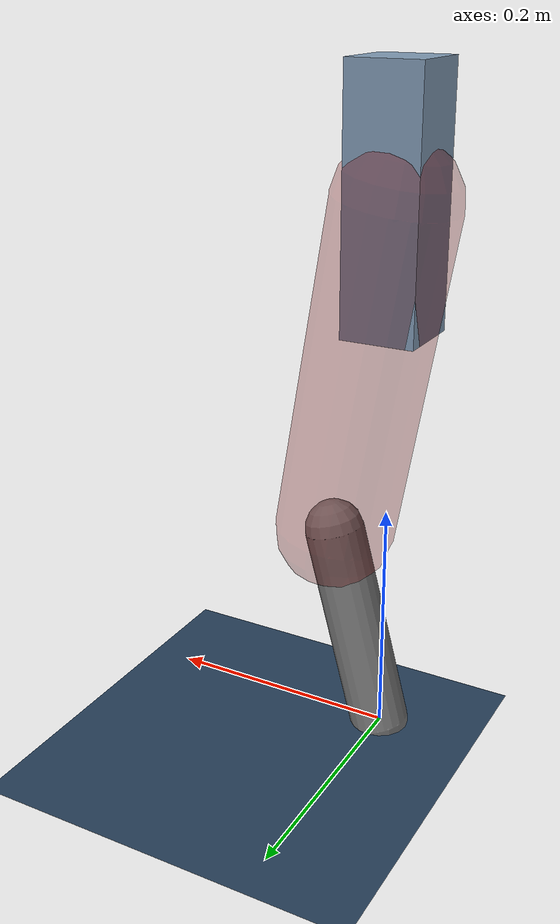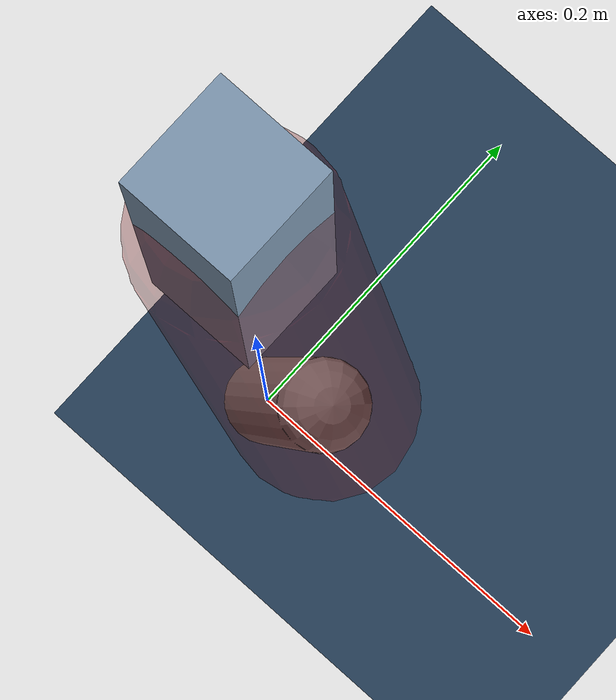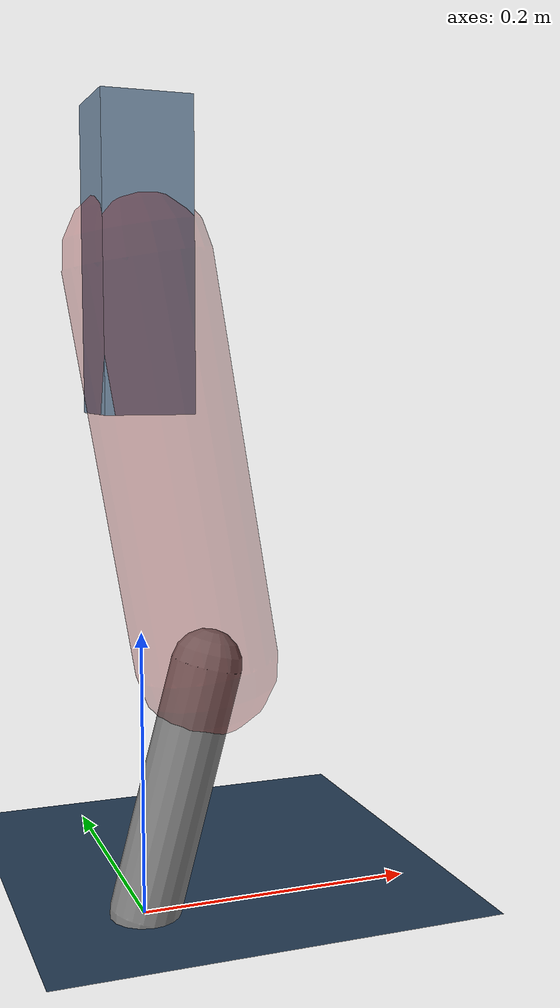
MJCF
<mujoco model="Hopper2D">
	<compiler inertiafromgeom="true" angle="radian" />
	<option timestep="0.001" integrator="implicit" cone="elliptic" solver="Newton" tolerance="1e-10" />

	<default>
		<geom contype="1" conaffinity="1" condim="3" friction="2 0.005 0.0001" solref="0.005 1" />
		<joint limited="true" damping="0.1" />
	</default>

	<asset>
		<texture name="skybox" type="skybox" builtin="gradient" rgb1=".4 .6 .8" rgb2="0 0 0" width="800" height="800" />
		<texture name="grid" type="2d" builtin="checker" rgb1=".1 .2 .3" rgb2=".2 .3 .4" width="300" height="300" mark="edge" markrgb=".2 .3 .4" />
		<material name="ground" texture="grid" texrepeat="1 1" texuniform="true" reflectance="0.1" />
		<material name="leg" rgba="0.5 0.6 0.7 1" />
	</asset>

	<worldbody>

		<geom name="floor" type="plane" size="5 5 0.25" material="ground" />

		<light directional="false" diffuse="0.8 0.8 0.8" specular="0.3 0.3 0.3" pos="0 0 2" dir="0 0 -1" />
		<light mode="targetbodycom" target="base" directional="false" diffuse="0.8 0.8 0.8" specular="0.3 0.3 0.3" pos="0 0 2" dir="0 0 -1" />

		<camera name="fixed" pos="0 -2 1" xyaxes="1 0 0 0 0 1" />
		<camera name="tracking" mode="trackcom" pos="0 -3 1" />

		<body name="root" pos="0 0 0.44868203051341493">
			<joint name="slide_x" type="slide" axis="1 0 0" range="-100 100" />
			<joint name="slide_z" type="slide" axis="0 0 1" range="0 10" />

			<body name="base" pos="0 0 0">
				<geom name="torso" type="box" size="0.03 0.03 0.1" mass="2.843" material="leg" />

				<body name="link1" pos="0 0 0" euler="0 1.4024576971799012 0">
					<joint type="hinge" axis="0 -1 0" pos="0 0 0" name="hinge1" limited="true" range="-3.14 3.14" stiffness="0" damping="0.1" />
					<geom name="thigh" type="capsule" fromto="0 0 0 0.2776111996249173 0 0" size="0.05" rgba="0.5 0 0 0.3" mass="0.9287891190247849" />

					<body name="link2" pos="0.2776111996249173 0 0" euler="0 0.4281243010031299 0">
						<joint type="hinge" axis="0 -1 0" pos="0 0 0" name="hinge2" limited="true" range="-3.14 3.14" stiffness="0" damping="0.1" />
						<geom name="shank" type="capsule" fromto="0 0 0 0.18107083088849765 0 0" size="0.025" mass="0.3848566647107981" />

					</body>
				</body>
			</body>
		</body>
	</worldbody>

	<actuator>
		<motor name="torque1" joint="hinge1" ctrlrange="-28.750163577366976 28.750163577366976" ctrllimited="true" gear="1" />
		<motor name="torque2" joint="hinge2" ctrlrange="-129.83355268400993 129.83355268400993" ctrllimited="true" gear="1" />
	</actuator>
</mujoco>
